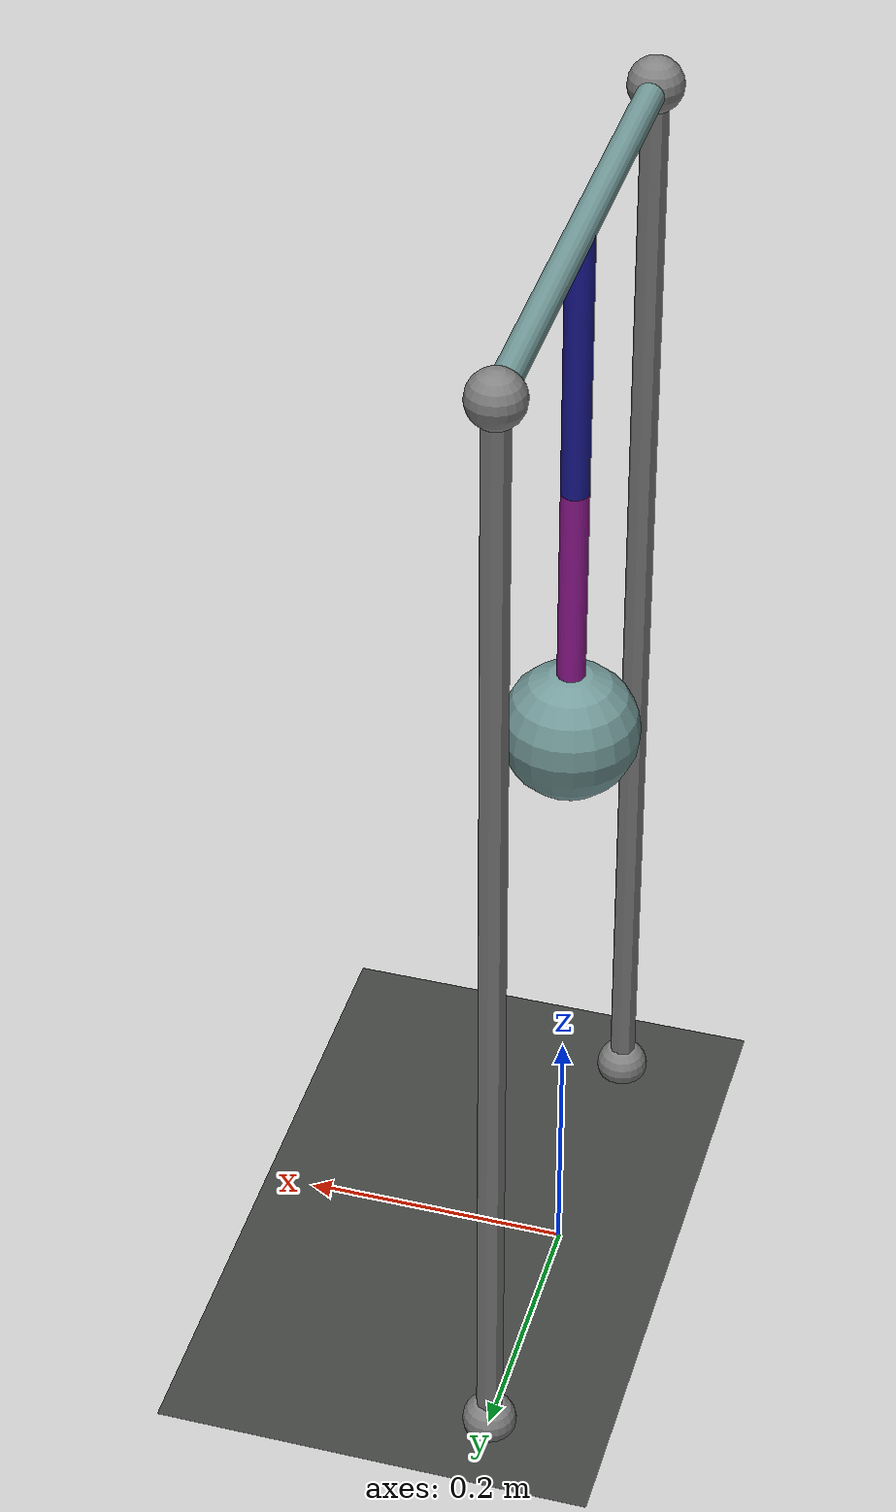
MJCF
<mujoco model="inverted double pendulum">
    <option timestep="0.01" iterations="20" gravity="0 0 -9.81">
        <flag sensornoise="enable"/>
    </option>

    <default>
    <geom  rgba="0.45 0.6 0.6 1"/>
        <site type="sphere" size="0.02"/>
    </default>
    <worldbody>
        <light directional="true" cutoff="4" exponent="20" diffuse="1 1 1" specular="0 0 0" pos=".9 .3 2.5" dir="-.9 -.3 -2.5 "/>

        <!-- ======= Ground ======= -->
        <geom name="ground" type="plane" pos="0 0 0" size="0.5 1 2" rgba=" .25 .26 .25 1"/>
        <site name="rFix" pos="0 -.2 .005"/>
        <site name="lFix" pos="0 .2 .005"/>

        <!-- ======= Beam ======= -->
        <body name="beam1" pos="0 0 1">
            <!--density of the rod is ten times smaller than other objects (e.g. the ball) for a better point mass approximation-->
            <geom name="rod1" type="cylinder" fromto="0 0 -0.1 0 0 -0.3" size=".01 .1" density="100" rgba="0.1 0.1 0.6 1"/>
            <geom pos="0 0 -.1" type="capsule" size=".01 .2" quat="0.707 0.707 0 0"/>
            <joint name="pivot1" pos="0 0 -0.1" axis="0 1 0" limited="false" damping=".05" type="hinge" />
            <site name="rBeam1" pos="0 -.2 -.1"/>
            <site name="lBeam1" pos="0 .2 -.1"/>
		<body name="pendulum2" pos="0 0 -.2">
 			<geom name="rod2" type="cylinder" pos="0 0 -0.2" size=".01 .1" density="100" rgba="0.6 0.1 0.6 1"/>
           		 <joint name="pivot2" pos="0 0 -0.1" axis="0 1 0" limited="false" damping=".05" type="hinge" />

      			      <body name="ballbody" pos="0 0 -0.3">
      		  	        <geom name="ballgeom" type="sphere" size=".05"/>
      		  	    </body>
  		  </body>
        </body>
    </worldbody>
    <tendon>
        <spatial name="lThread" width="0.01">
            <site site="lBeam1"/>
            <site site="lFix"/>
        </spatial>
        <spatial name="rThread"  width="0.01">
        <site site="rBeam1"/>
        <site site="rFix"/>
        </spatial>
    </tendon>
    <actuator>
        <motor joint='pivot1' name='motor' gear="1" />
    </actuator>
</mujoco>
